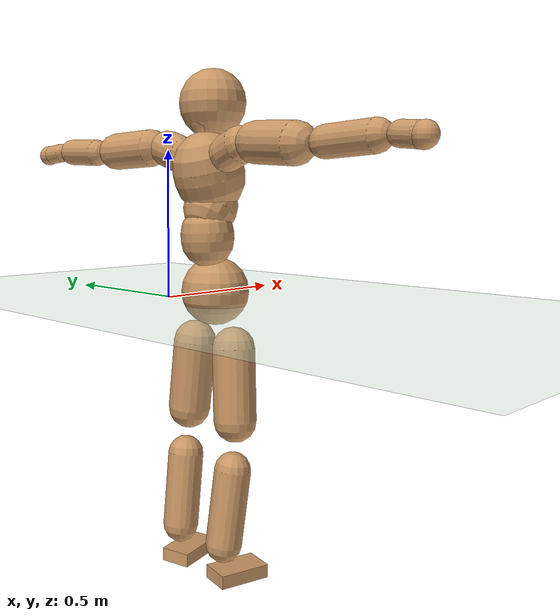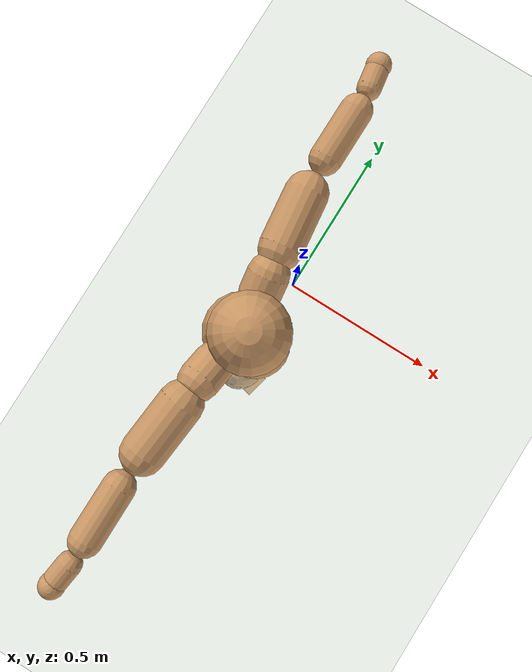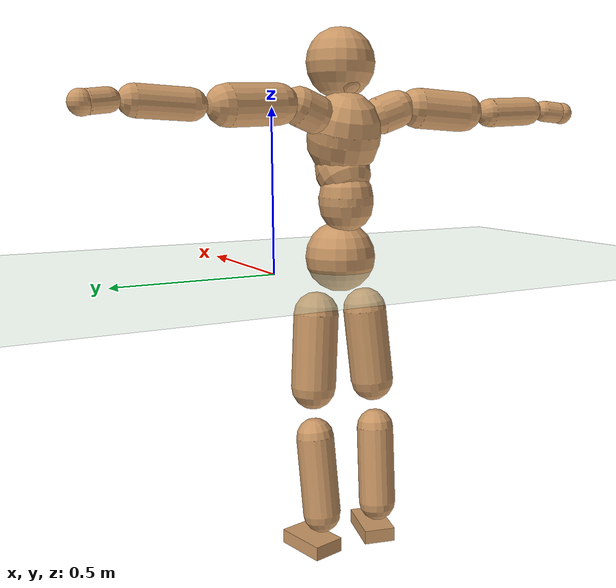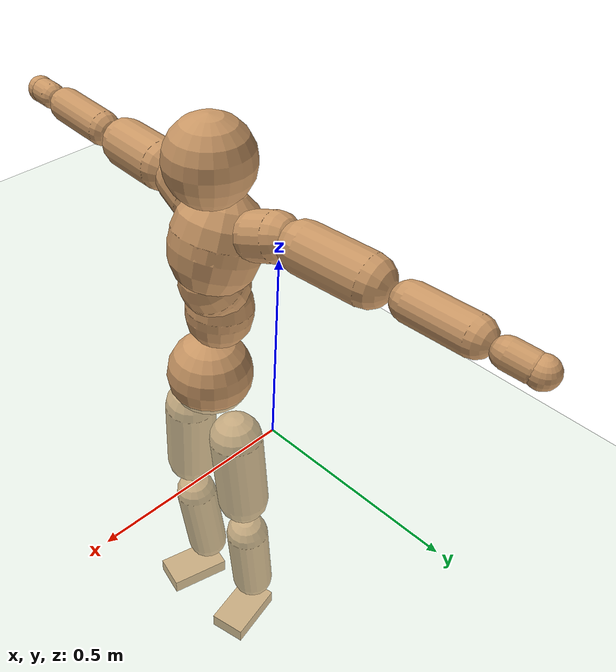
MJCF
<mujoco model="humanoid">
  <compiler coordinate="local"/>
  <default>
    <joint damping="0.0" armature="0.01" stiffness="0.0" limited="true"/>
    <geom conaffinity="1" condim="3" contype="7" margin="0.001" rgba="0.8 0.6 .4 1"/>
  </default>
  <asset>
    <texture type="skybox" builtin="gradient" rgb1=".4 .5 .6" rgb2="0 0 0" width="100" height="100"/>
    <texture builtin="flat" height="1278" mark="cross" markrgb="1 1 1" name="texgeom" random="0.01" rgb1="0.8 0.6 0.4" rgb2="0.8 0.6 0.4" type="cube" width="127"/>
    <texture builtin="checker" height="100" name="texplane" rgb1="0 0 0" rgb2="0.8 0.8 0.8" type="2d" width="100"/>
    <material name="MatPlane" reflectance="0.5" shininess="1" specular="1" texrepeat="60 60" texture="texplane"/>
    <material name="geom" texture="texgeom" texuniform="true"/>
  </asset>
  <worldbody>
    <light cutoff="100" diffuse="1 1 1" dir="-0 0 -1.3" directional="true" exponent="1" pos="0 0 1.3" specular=".1 .1 .1"/>
    <geom conaffinity="1" condim="3" name="floor" pos="0 0 0" rgba="0.8 0.9 0.8 1" size="100 100 .2" type="plane" material="MatPlane"/>
    <body name="Pelvis" pos="0.001 -0.2291 0.0425">
      <freejoint name="Pelvis"/>
      <geom type="sphere" contype="1" conaffinity="1" density="500" size="0.1113" pos="0.0000 0.0000 0.0000" name="Pelvis"/>
      <body name="L_Hip" pos="-0.0021 0.0845 -0.0994">
        <joint name="L_Hip_x" type="hinge" pos="0 0 0" axis="1 0 0" stiffness="800" damping="80" armature="0.02" range="-180.0000 180.0000"/>
        <joint name="L_Hip_y" type="hinge" pos="0 0 0" axis="0 1 0" stiffness="800" damping="80" armature="0.02" range="-180.0000 180.0000"/>
        <joint name="L_Hip_z" type="hinge" pos="0 0 0" axis="0 0 1" stiffness="800" damping="80" armature="0.02" range="-180.0000 180.0000"/>
        <geom type="capsule" contype="1" conaffinity="1" density="500" fromto="-0.0036 0.0056 -0.0779 -0.0143 0.0225 -0.3116" size="0.071" name="L_Hip"/>
        <body name="L_Knee" pos="-0.0179 0.0281 -0.3896">
          <joint name="L_Knee_x" type="hinge" pos="0 0 0" axis="1 0 0" stiffness="800" damping="80" armature="0.02" range="-180.0000 180.0000"/>
          <joint name="L_Knee_y" type="hinge" pos="0 0 0" axis="0 1 0" stiffness="800" damping="80" armature="0.02" range="-180.0000 180.0000"/>
          <joint name="L_Knee_z" type="hinge" pos="0 0 0" axis="0 0 1" stiffness="800" damping="80" armature="0.02" range="-180.0000 180.0000"/>
          <geom type="capsule" contype="1" conaffinity="1" density="500" fromto="-0.0105 -0.0024 -0.0835 -0.0418 -0.0095 -0.3341" size="0.0603" name="L_Knee"/>
          <body name="L_Ankle" pos="-0.0523 -0.0118 -0.4176">
            <joint name="L_Ankle_x" type="hinge" pos="0 0 0" axis="1 0 0" stiffness="800" damping="80" armature="0.02" range="-180.0000 180.0000"/>
            <joint name="L_Ankle_y" type="hinge" pos="0 0 0" axis="0 1 0" stiffness="800" damping="80" armature="0.02" range="-180.0000 180.0000"/>
            <joint name="L_Ankle_z" type="hinge" pos="0 0 0" axis="0 0 1" stiffness="800" damping="80" armature="0.02" range="-180.0000 180.0000"/>
            <geom type="box" contype="1" conaffinity="1" density="500" pos="0.0612 0.0139 -0.0301" size="0.0881 0.0516 0.0227" quat="0.9938 0.0000 0.0000 0.1114" name="L_Ankle"/>
            <body name="L_Toe" pos="0.1223 0.0278 -0.0602">
              <joint name="L_Toe_x" type="hinge" pos="0 0 0" axis="1 0 0" stiffness="500" damping="50" armature="0.02" range="-180.0000 180.0000"/>
              <joint name="L_Toe_y" type="hinge" pos="0 0 0" axis="0 1 0" stiffness="500" damping="50" armature="0.02" range="-180.0000 180.0000"/>
              <joint name="L_Toe_z" type="hinge" pos="0 0 0" axis="0 0 1" stiffness="500" damping="50" armature="0.02" range="-180.0000 180.0000"/>
              <geom type="box" contype="1" conaffinity="1" density="500" pos="0.0000 0.0000 0.0304" size="0.001 0.0026 0.0012" quat="0.9931 0.0000 0.0000 0.1172" name="L_Toe"/>
            </body>
          </body>
        </body>
      </body>
      <body name="R_Hip" pos="0.0013 -0.0813 -0.0997">
        <joint name="R_Hip_x" type="hinge" pos="0 0 0" axis="1 0 0" stiffness="800" damping="80" armature="0.02" range="-180.0000 180.0000"/>
        <joint name="R_Hip_y" type="hinge" pos="0 0 0" axis="0 1 0" stiffness="800" damping="80" armature="0.02" range="-180.0000 180.0000"/>
        <joint name="R_Hip_z" type="hinge" pos="0 0 0" axis="0 0 1" stiffness="800" damping="80" armature="0.02" range="-180.0000 180.0000"/>
        <geom type="capsule" contype="1" conaffinity="1" density="500" fromto="-0.0040 -0.0072 -0.0789 -0.0159 -0.0288 -0.3155" size="0.0702" name="R_Hip"/>
        <body name="R_Knee" pos="-0.0198 -0.036 -0.3943">
          <joint name="R_Knee_x" type="hinge" pos="0 0 0" axis="1 0 0" stiffness="800" damping="80" armature="0.02" range="-180.0000 180.0000"/>
          <joint name="R_Knee_y" type="hinge" pos="0 0 0" axis="0 1 0" stiffness="800" damping="80" armature="0.02" range="-180.0000 180.0000"/>
          <joint name="R_Knee_z" type="hinge" pos="0 0 0" axis="0 0 1" stiffness="800" damping="80" armature="0.02" range="-180.0000 180.0000"/>
          <geom type="capsule" contype="1" conaffinity="1" density="500" fromto="-0.0102 0.0028 -0.0838 -0.0409 0.0114 -0.3352" size="0.0602" name="R_Knee"/>
          <body name="R_Ankle" pos="-0.0511 0.0142 -0.4191">
            <joint name="R_Ankle_x" type="hinge" pos="0 0 0" axis="1 0 0" stiffness="800" damping="80" armature="0.02" range="-180.0000 180.0000"/>
            <joint name="R_Ankle_y" type="hinge" pos="0 0 0" axis="0 1 0" stiffness="800" damping="80" armature="0.02" range="-180.0000 180.0000"/>
            <joint name="R_Ankle_z" type="hinge" pos="0 0 0" axis="0 0 1" stiffness="800" damping="80" armature="0.02" range="-180.0000 180.0000"/>
            <geom type="box" contype="1" conaffinity="1" density="500" pos="0.0636 -0.0152 -0.0258" size="0.0894 0.0512 0.0227" quat="0.9931 0.0000 0.0000 -0.1173" name="R_Ankle"/>
            <body name="R_Toe" pos="0.1271 -0.0305 -0.0516">
              <joint name="R_Toe_x" type="hinge" pos="0 0 0" axis="1 0 0" stiffness="500" damping="50" armature="0.02" range="-180.0000 180.0000"/>
              <joint name="R_Toe_y" type="hinge" pos="0 0 0" axis="0 1 0" stiffness="500" damping="50" armature="0.02" range="-180.0000 180.0000"/>
              <joint name="R_Toe_z" type="hinge" pos="0 0 0" axis="0 0 1" stiffness="500" damping="50" armature="0.02" range="-180.0000 180.0000"/>
              <geom type="box" contype="1" conaffinity="1" density="500" pos="0.0000 0.0000 0.0279" size="0.001 0.0025 0.0012" quat="0.9941 0.0000 0.0000 -0.1082" name="R_Toe"/>
            </body>
          </body>
        </body>
      </body>
      <body name="Torso" pos="-0.0341 -0.0027 0.1154">
        <joint name="Torso_x" type="hinge" pos="0 0 0" axis="1 0 0" stiffness="1000" damping="100" armature="0.02" range="-180.0000 180.0000"/>
        <joint name="Torso_y" type="hinge" pos="0 0 0" axis="0 1 0" stiffness="1000" damping="100" armature="0.02" range="-180.0000 180.0000"/>
        <joint name="Torso_z" type="hinge" pos="0 0 0" axis="0 0 1" stiffness="1000" damping="100" armature="0.02" range="-180.0000 180.0000"/>
        <geom type="capsule" contype="1" conaffinity="1" density="500" fromto="-0.0032 0.0018 0.0768 -0.0022 0.0012 0.0512" size="0.0857" name="Torso"/>
        <body name="Spine" pos="-0.0054 0.003 0.128">
          <joint name="Spine_x" type="hinge" pos="0 0 0" axis="1 0 0" stiffness="1000" damping="100" armature="0.02" range="-180.0000 180.0000"/>
          <joint name="Spine_y" type="hinge" pos="0 0 0" axis="0 1 0" stiffness="1000" damping="100" armature="0.02" range="-180.0000 180.0000"/>
          <joint name="Spine_z" type="hinge" pos="0 0 0" axis="0 0 1" stiffness="1000" damping="100" armature="0.02" range="-180.0000 180.0000"/>
          <geom type="capsule" contype="1" conaffinity="1" density="500" fromto="0.0224 0.0010 0.0318 0.0149 0.0007 0.0212" size="0.086" name="Spine"/>
          <body name="Chest" pos="0.0373 0.0016 0.0531">
            <joint name="Chest_x" type="hinge" pos="0 0 0" axis="1 0 0" stiffness="1000" damping="100" armature="0.02" range="-180.0000 180.0000"/>
            <joint name="Chest_y" type="hinge" pos="0 0 0" axis="0 1 0" stiffness="1000" damping="100" armature="0.02" range="-180.0000 180.0000"/>
            <joint name="Chest_z" type="hinge" pos="0 0 0" axis="0 0 1" stiffness="1000" damping="100" armature="0.02" range="-180.0000 180.0000"/>
            <geom type="capsule" contype="1" conaffinity="1" density="500" fromto="-0.0319 -0.0001 0.1000 -0.0212 -0.0001 0.0667" size="0.1136" name="Chest"/>
            <body name="Neck" pos="-0.0629 0.0004 0.2345">
              <joint name="Neck_x" type="hinge" pos="0 0 0" axis="1 0 0" stiffness="500" damping="50" armature="0.02" range="-180.0000 180.0000"/>
              <joint name="Neck_y" type="hinge" pos="0 0 0" axis="0 1 0" stiffness="500" damping="50" armature="0.02" range="-180.0000 180.0000"/>
              <joint name="Neck_z" type="hinge" pos="0 0 0" axis="0 0 1" stiffness="500" damping="50" armature="0.02" range="-180.0000 180.0000"/>
              <geom type="capsule" contype="1" conaffinity="1" density="500" fromto="0.0107 0.0003 0.0124 0.0430 0.0011 0.0496" size="0.0458" name="Neck"/>
              <body name="Head" pos="0.0537 0.0014 0.062">
                <joint name="Head_x" type="hinge" pos="0 0 0" axis="1 0 0" stiffness="500" damping="50" armature="0.02" range="-180.0000 180.0000"/>
                <joint name="Head_y" type="hinge" pos="0 0 0" axis="0 1 0" stiffness="500" damping="50" armature="0.02" range="-180.0000 180.0000"/>
                <joint name="Head_z" type="hinge" pos="0 0 0" axis="0 0 1" stiffness="500" damping="50" armature="0.02" range="-180.0000 180.0000"/>
                <geom type="sphere" contype="1" conaffinity="1" density="500" size="0.1065" pos="0.0000 0.0000 0.0000" name="Head"/>
              </body>
            </body>
            <body name="L_Thorax" pos="-0.0451 0.0878 0.134">
              <joint name="L_Thorax_x" type="hinge" pos="0 0 0" axis="1 0 0" stiffness="500" damping="50" armature="0.02" range="-180.0000 180.0000"/>
              <joint name="L_Thorax_y" type="hinge" pos="0 0 0" axis="0 1 0" stiffness="500" damping="50" armature="0.02" range="-180.0000 180.0000"/>
              <joint name="L_Thorax_z" type="hinge" pos="0 0 0" axis="0 0 1" stiffness="500" damping="50" armature="0.02" range="-180.0000 180.0000"/>
              <geom type="capsule" contype="1" conaffinity="1" density="500" fromto="-0.0024 0.0189 0.0071 -0.0095 0.0754 0.0282" size="0.0586" name="L_Thorax"/>
              <body name="L_Shoulder" pos="-0.0119 0.0943 0.0353">
                <joint name="L_Shoulder_x" type="hinge" pos="0 0 0" axis="1 0 0" stiffness="500" damping="50" armature="0.02" range="-720.0000 720.0000"/>
                <joint name="L_Shoulder_y" type="hinge" pos="0 0 0" axis="0 1 0" stiffness="500" damping="50" armature="0.02" range="-720.0000 720.0000"/>
                <joint name="L_Shoulder_z" type="hinge" pos="0 0 0" axis="0 0 1" stiffness="500" damping="50" armature="0.02" range="-720.0000 720.0000"/>
                <geom type="capsule" contype="1" conaffinity="1" density="500" fromto="-0.0066 0.0541 -0.0024 -0.0265 0.2164 -0.0097" size="0.0609" name="L_Shoulder"/>
                <body name="L_Elbow" pos="-0.0331 0.2705 -0.0121">
                  <joint name="L_Elbow_x" type="hinge" pos="0 0 0" axis="1 0 0" stiffness="500" damping="50" armature="0.02" range="-720.0000 720.0000"/>
                  <joint name="L_Elbow_y" type="hinge" pos="0 0 0" axis="0 1 0" stiffness="500" damping="50" armature="0.02" range="-720.0000 720.0000"/>
                  <joint name="L_Elbow_z" type="hinge" pos="0 0 0" axis="0 0 1" stiffness="500" damping="50" armature="0.02" range="-720.0000 720.0000"/>
                  <geom type="capsule" contype="1" conaffinity="1" density="500" fromto="0.0005 0.0510 0.0023 0.0020 0.2038 0.0091" size="0.0453" name="L_Elbow"/>
                  <body name="L_Wrist" pos="0.0026 0.2548 0.0114">
                    <joint name="L_Wrist_x" type="hinge" pos="0 0 0" axis="1 0 0" stiffness="300" damping="30" armature="0.02" range="-180.0000 180.0000"/>
                    <joint name="L_Wrist_y" type="hinge" pos="0 0 0" axis="0 1 0" stiffness="300" damping="30" armature="0.02" range="-180.0000 180.0000"/>
                    <joint name="L_Wrist_z" type="hinge" pos="0 0 0" axis="0 0 1" stiffness="300" damping="30" armature="0.02" range="-180.0000 180.0000"/>
                    <geom type="capsule" contype="1" conaffinity="1" density="500" fromto="-0.0029 0.0175 -0.0021 -0.0114 0.0701 -0.0083" size="0.0336" name="L_Wrist"/>
                    <body name="L_Hand" pos="-0.0143 0.0877 -0.0104">
                      <joint name="L_Hand_x" type="hinge" pos="0 0 0" axis="1 0 0" stiffness="300" damping="30" armature="0.02" range="-180.0000 180.0000"/>
                      <joint name="L_Hand_y" type="hinge" pos="0 0 0" axis="0 1 0" stiffness="300" damping="30" armature="0.02" range="-180.0000 180.0000"/>
                      <joint name="L_Hand_z" type="hinge" pos="0 0 0" axis="0 0 1" stiffness="300" damping="30" armature="0.02" range="-180.0000 180.0000"/>
                      <geom type="sphere" contype="1" conaffinity="1" density="500" size="0.0354" pos="0.0000 0.0000 0.0000" name="L_Hand"/>
                    </body>
                  </body>
                </body>
              </body>
            </body>
            <body name="R_Thorax" pos="-0.0513 -0.0887 0.1315">
              <joint name="R_Thorax_x" type="hinge" pos="0 0 0" axis="1 0 0" stiffness="500" damping="50" armature="0.02" range="-180.0000 180.0000"/>
              <joint name="R_Thorax_y" type="hinge" pos="0 0 0" axis="0 1 0" stiffness="500" damping="50" armature="0.02" range="-180.0000 180.0000"/>
              <joint name="R_Thorax_z" type="hinge" pos="0 0 0" axis="0 0 1" stiffness="500" damping="50" armature="0.02" range="-180.0000 180.0000"/>
              <geom type="capsule" contype="1" conaffinity="1" density="500" fromto="-0.0025 -0.0198 0.0074 -0.0102 -0.0791 0.0295" size="0.0578" name="R_Thorax"/>
              <body name="R_Shoulder" pos="-0.0127 -0.0989 0.0369">
                <joint name="R_Shoulder_x" type="hinge" pos="0 0 0" axis="1 0 0" stiffness="500" damping="50" armature="0.02" range="-720.0000 720.0000"/>
                <joint name="R_Shoulder_y" type="hinge" pos="0 0 0" axis="0 1 0" stiffness="500" damping="50" armature="0.02" range="-720.0000 720.0000"/>
                <joint name="R_Shoulder_z" type="hinge" pos="0 0 0" axis="0 0 1" stiffness="500" damping="50" armature="0.02" range="-720.0000 720.0000"/>
                <geom type="capsule" contype="1" conaffinity="1" density="500" fromto="-0.0053 -0.0537 -0.0033 -0.0214 -0.2148 -0.0130" size="0.0626" name="R_Shoulder"/>
                <body name="R_Elbow" pos="-0.0267 -0.2685 -0.0163">
                  <joint name="R_Elbow_x" type="hinge" pos="0 0 0" axis="1 0 0" stiffness="500" damping="50" armature="0.02" range="-720.0000 720.0000"/>
                  <joint name="R_Elbow_y" type="hinge" pos="0 0 0" axis="0 1 0" stiffness="500" damping="50" armature="0.02" range="-720.0000 720.0000"/>
                  <joint name="R_Elbow_z" type="hinge" pos="0 0 0" axis="0 0 1" stiffness="500" damping="50" armature="0.02" range="-720.0000 720.0000"/>
                  <geom type="capsule" contype="1" conaffinity="1" density="500" fromto="0.0000 -0.0529 0.0027 0.0002 -0.2114 0.0107" size="0.0459" name="R_Elbow"/>
                  <body name="R_Wrist" pos="0.0002 -0.2643 0.0134">
                    <joint name="R_Wrist_x" type="hinge" pos="0 0 0" axis="1 0 0" stiffness="300" damping="30" armature="0.02" range="-180.0000 180.0000"/>
                    <joint name="R_Wrist_y" type="hinge" pos="0 0 0" axis="0 1 0" stiffness="300" damping="30" armature="0.02" range="-180.0000 180.0000"/>
                    <joint name="R_Wrist_z" type="hinge" pos="0 0 0" axis="0 0 1" stiffness="300" damping="30" armature="0.02" range="-180.0000 180.0000"/>
                    <geom type="capsule" contype="1" conaffinity="1" density="500" fromto="-0.0024 -0.0179 -0.0016 -0.0094 -0.0715 -0.0064" size="0.0346" name="R_Wrist"/>
                    <body name="R_Hand" pos="-0.0118 -0.0893 -0.008">
                      <joint name="R_Hand_x" type="hinge" pos="0 0 0" axis="1 0 0" stiffness="300" damping="30" armature="0.02" range="-180.0000 180.0000"/>
                      <joint name="R_Hand_y" type="hinge" pos="0 0 0" axis="0 1 0" stiffness="300" damping="30" armature="0.02" range="-180.0000 180.0000"/>
                      <joint name="R_Hand_z" type="hinge" pos="0 0 0" axis="0 0 1" stiffness="300" damping="30" armature="0.02" range="-180.0000 180.0000"/>
                      <geom type="sphere" contype="1" conaffinity="1" density="500" size="0.0360" pos="0.0000 0.0000 0.0000" name="R_Hand"/>
                    </body>
                  </body>
                </body>
              </body>
            </body>
          </body>
        </body>
      </body>
    </body>
  </worldbody>
  <actuator>
    <motor name="L_Hip_x" joint="L_Hip_x" gear="500"/>
    <motor name="L_Hip_y" joint="L_Hip_y" gear="500"/>
    <motor name="L_Hip_z" joint="L_Hip_z" gear="500"/>
    <motor name="L_Knee_x" joint="L_Knee_x" gear="500"/>
    <motor name="L_Knee_y" joint="L_Knee_y" gear="500"/>
    <motor name="L_Knee_z" joint="L_Knee_z" gear="500"/>
    <motor name="L_Ankle_x" joint="L_Ankle_x" gear="500"/>
    <motor name="L_Ankle_y" joint="L_Ankle_y" gear="500"/>
    <motor name="L_Ankle_z" joint="L_Ankle_z" gear="500"/>
    <motor name="L_Toe_x" joint="L_Toe_x" gear="500"/>
    <motor name="L_Toe_y" joint="L_Toe_y" gear="500"/>
    <motor name="L_Toe_z" joint="L_Toe_z" gear="500"/>
    <motor name="R_Hip_x" joint="R_Hip_x" gear="500"/>
    <motor name="R_Hip_y" joint="R_Hip_y" gear="500"/>
    <motor name="R_Hip_z" joint="R_Hip_z" gear="500"/>
    <motor name="R_Knee_x" joint="R_Knee_x" gear="500"/>
    <motor name="R_Knee_y" joint="R_Knee_y" gear="500"/>
    <motor name="R_Knee_z" joint="R_Knee_z" gear="500"/>
    <motor name="R_Ankle_x" joint="R_Ankle_x" gear="500"/>
    <motor name="R_Ankle_y" joint="R_Ankle_y" gear="500"/>
    <motor name="R_Ankle_z" joint="R_Ankle_z" gear="500"/>
    <motor name="R_Toe_x" joint="R_Toe_x" gear="500"/>
    <motor name="R_Toe_y" joint="R_Toe_y" gear="500"/>
    <motor name="R_Toe_z" joint="R_Toe_z" gear="500"/>
    <motor name="Torso_x" joint="Torso_x" gear="500"/>
    <motor name="Torso_y" joint="Torso_y" gear="500"/>
    <motor name="Torso_z" joint="Torso_z" gear="500"/>
    <motor name="Spine_x" joint="Spine_x" gear="500"/>
    <motor name="Spine_y" joint="Spine_y" gear="500"/>
    <motor name="Spine_z" joint="Spine_z" gear="500"/>
    <motor name="Chest_x" joint="Chest_x" gear="500"/>
    <motor name="Chest_y" joint="Chest_y" gear="500"/>
    <motor name="Chest_z" joint="Chest_z" gear="500"/>
    <motor name="Neck_x" joint="Neck_x" gear="500"/>
    <motor name="Neck_y" joint="Neck_y" gear="500"/>
    <motor name="Neck_z" joint="Neck_z" gear="500"/>
    <motor name="Head_x" joint="Head_x" gear="500"/>
    <motor name="Head_y" joint="Head_y" gear="500"/>
    <motor name="Head_z" joint="Head_z" gear="500"/>
    <motor name="L_Thorax_x" joint="L_Thorax_x" gear="500"/>
    <motor name="L_Thorax_y" joint="L_Thorax_y" gear="500"/>
    <motor name="L_Thorax_z" joint="L_Thorax_z" gear="500"/>
    <motor name="L_Shoulder_x" joint="L_Shoulder_x" gear="500"/>
    <motor name="L_Shoulder_y" joint="L_Shoulder_y" gear="500"/>
    <motor name="L_Shoulder_z" joint="L_Shoulder_z" gear="500"/>
    <motor name="L_Elbow_x" joint="L_Elbow_x" gear="500"/>
    <motor name="L_Elbow_y" joint="L_Elbow_y" gear="500"/>
    <motor name="L_Elbow_z" joint="L_Elbow_z" gear="500"/>
    <motor name="L_Wrist_x" joint="L_Wrist_x" gear="500"/>
    <motor name="L_Wrist_y" joint="L_Wrist_y" gear="500"/>
    <motor name="L_Wrist_z" joint="L_Wrist_z" gear="500"/>
    <motor name="L_Hand_x" joint="L_Hand_x" gear="500"/>
    <motor name="L_Hand_y" joint="L_Hand_y" gear="500"/>
    <motor name="L_Hand_z" joint="L_Hand_z" gear="500"/>
    <motor name="R_Thorax_x" joint="R_Thorax_x" gear="500"/>
    <motor name="R_Thorax_y" joint="R_Thorax_y" gear="500"/>
    <motor name="R_Thorax_z" joint="R_Thorax_z" gear="500"/>
    <motor name="R_Shoulder_x" joint="R_Shoulder_x" gear="500"/>
    <motor name="R_Shoulder_y" joint="R_Shoulder_y" gear="500"/>
    <motor name="R_Shoulder_z" joint="R_Shoulder_z" gear="500"/>
    <motor name="R_Elbow_x" joint="R_Elbow_x" gear="500"/>
    <motor name="R_Elbow_y" joint="R_Elbow_y" gear="500"/>
    <motor name="R_Elbow_z" joint="R_Elbow_z" gear="500"/>
    <motor name="R_Wrist_x" joint="R_Wrist_x" gear="500"/>
    <motor name="R_Wrist_y" joint="R_Wrist_y" gear="500"/>
    <motor name="R_Wrist_z" joint="R_Wrist_z" gear="500"/>
    <motor name="R_Hand_x" joint="R_Hand_x" gear="500"/>
    <motor name="R_Hand_y" joint="R_Hand_y" gear="500"/>
    <motor name="R_Hand_z" joint="R_Hand_z" gear="500"/>
  </actuator>
  <contact>
    <exclude body1="Torso" body2="Chest"/>
    <exclude body1="Head" body2="Chest"/>
    <exclude body1="R_Knee" body2="R_Toe"/>
    <exclude body1="R_Knee" body2="L_Ankle"/>
    <exclude body1="R_Knee" body2="L_Toe"/>
    <exclude body1="L_Knee" body2="L_Toe"/>
    <exclude body1="L_Knee" body2="R_Ankle"/>
    <exclude body1="L_Knee" body2="R_Toe"/>
    <exclude body1="L_Shoulder" body2="Chest"/>
    <exclude body1="R_Shoulder" body2="Chest"/>
  </contact>
  <sensor/>
  <size njmax="700" nconmax="700"/>
</mujoco>
